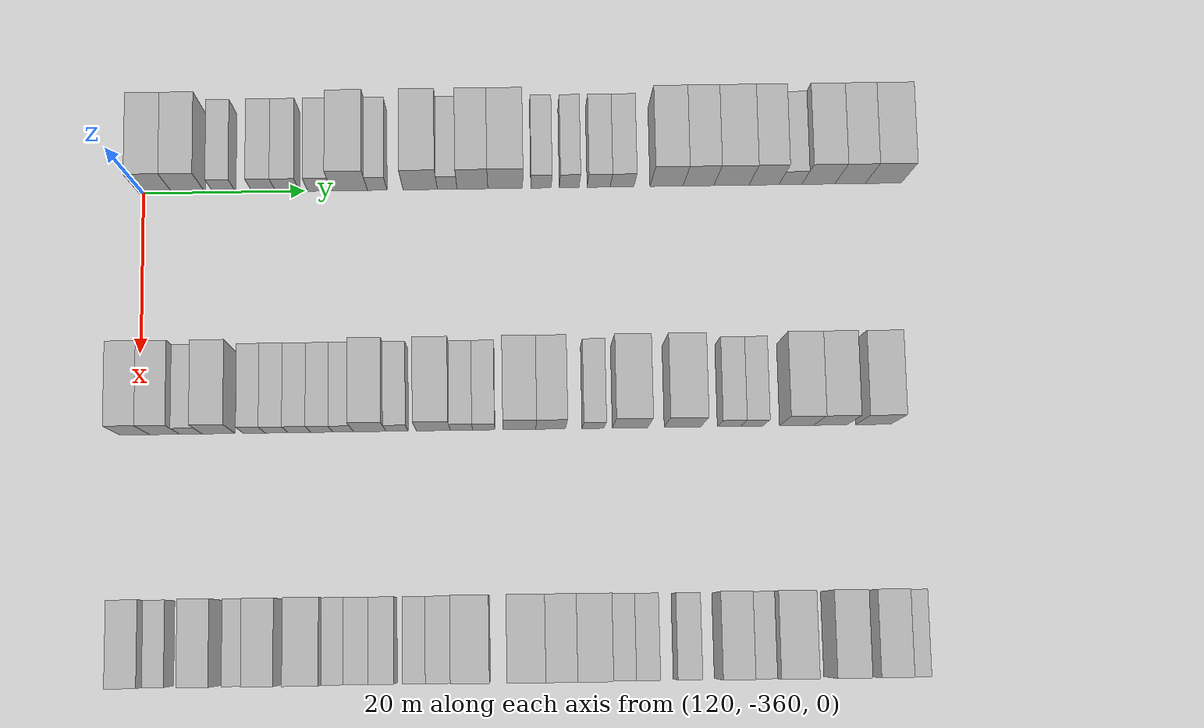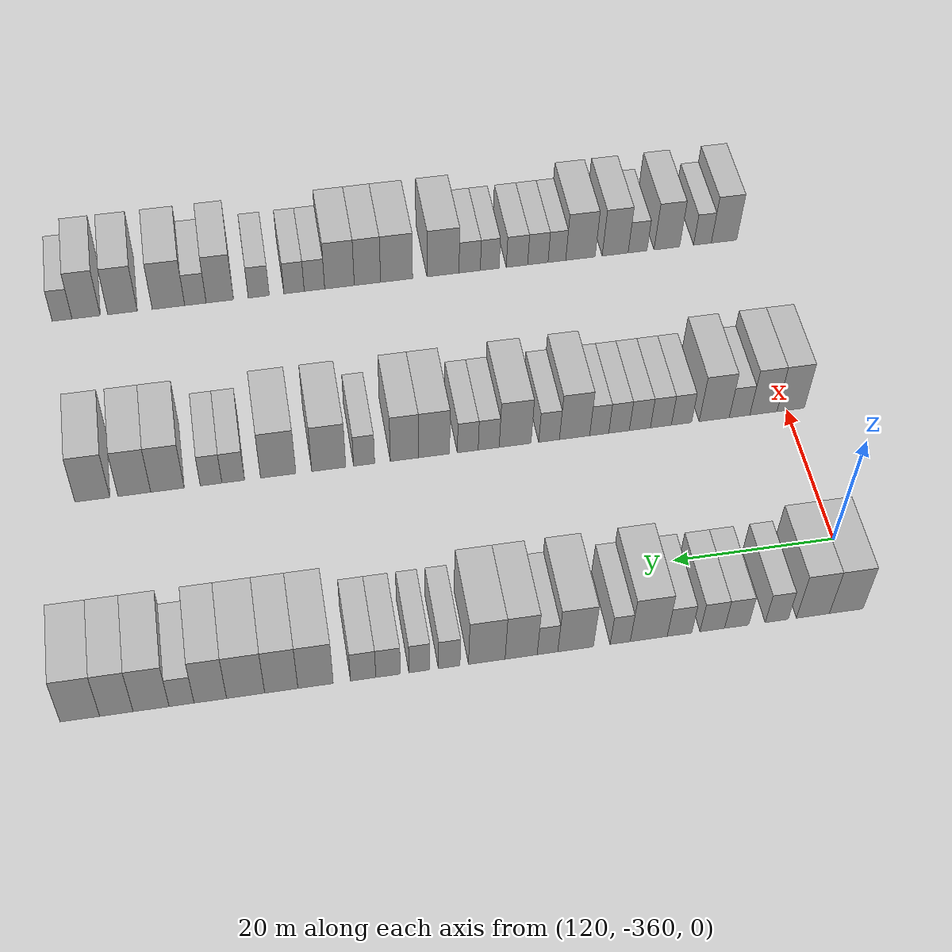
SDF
<sdf version="1.6">
 <world name="default">
  <model name="building_727">
   <static>1</static>
   <pose>115.0000 -358.4444 0 0.000000 0.000000 0.000000</pose>
   <link name="link">
    <pose>0 0 4.50 0 0 0</pose>
    <collision name="collision"><geometry><box><size>10.0000 4.1102 9.0000</size></box></geometry></collision>
    <visual name="visual">
     <cast_shadows>0</cast_shadows>
     <geometry><box><size>10.0000 4.1102 9.0000</size></box></geometry>
     <material>
      <script>
       <uri>model://HANNAS_wall/materials/scripts</uri>
       <uri>model://HANNAS_wall/materials/textures</uri>
       <name>vrc/HANNAS_wall</name>
      </script>
     </material>
    </visual>
   </link>
  </model>
  <model name="building_728">
   <static>1</static>
   <pose>115.0000 -354.3730 0 0.000000 0.000000 0.000000</pose>
   <link name="link">
    <pose>0 0 4.50 0 0 0</pose>
    <collision name="collision"><geometry><box><size>10.0000 4.0326 9.0000</size></box></geometry></collision>
    <visual name="visual">
     <cast_shadows>0</cast_shadows>
     <geometry><box><size>10.0000 4.0326 9.0000</size></box></geometry>
     <material>
      <script>
       <uri>model://HANNAS_wall/materials/scripts</uri>
       <uri>model://HANNAS_wall/materials/textures</uri>
       <name>vrc/HANNAS_wall</name>
      </script>
     </material>
    </visual>
   </link>
  </model>
  <model name="building_729">
   <static>1</static>
   <pose>115.0000 -349.9616 0 0.000000 0.000000 0.000000</pose>
   <link name="link">
    <pose>0 0 3.00 0 0 0</pose>
    <collision name="collision"><geometry><box><size>10.0000 2.7902 6.0000</size></box></geometry></collision>
    <visual name="visual">
     <cast_shadows>0</cast_shadows>
     <geometry><box><size>10.0000 2.7902 6.0000</size></box></geometry>
     <material>
      <script>
       <uri>model://HANNAS_wall/materials/scripts</uri>
       <uri>model://HANNAS_wall/materials/textures</uri>
       <name>vrc/HANNAS_wall</name>
      </script>
     </material>
    </visual>
   </link>
  </model>
  <model name="building_730">
   <static>1</static>
   <pose>115.0000 -345.1060 0 0.000000 0.000000 0.000000</pose>
   <link name="link">
    <pose>0 0 3.00 0 0 0</pose>
    <collision name="collision"><geometry><box><size>10.0000 2.9210 6.0000</size></box></geometry></collision>
    <visual name="visual">
     <cast_shadows>0</cast_shadows>
     <geometry><box><size>10.0000 2.9210 6.0000</size></box></geometry>
     <material>
      <script>
       <uri>model://HANNAS_wall/materials/scripts</uri>
       <uri>model://HANNAS_wall/materials/textures</uri>
       <name>vrc/HANNAS_wall</name>
      </script>
     </material>
    </visual>
   </link>
  </model>
  <model name="building_731">
   <static>1</static>
   <pose>115.0000 -342.1643 0 0.000000 0.000000 0.000000</pose>
   <link name="link">
    <pose>0 0 3.00 0 0 0</pose>
    <collision name="collision"><geometry><box><size>10.0000 2.9624 6.0000</size></box></geometry></collision>
    <visual name="visual">
     <cast_shadows>0</cast_shadows>
     <geometry><box><size>10.0000 2.9624 6.0000</size></box></geometry>
     <material>
      <script>
       <uri>model://HANNAS_wall/materials/scripts</uri>
       <uri>model://HANNAS_wall/materials/textures</uri>
       <name>vrc/HANNAS_wall</name>
      </script>
     </material>
    </visual>
   </link>
  </model>
  <model name="building_732">
   <static>1</static>
   <pose>115.0000 -338.2102 0 0.000000 0.000000 0.000000</pose>
   <link name="link">
    <pose>0 0 3.00 0 0 0</pose>
    <collision name="collision"><geometry><box><size>10.0000 2.9458 6.0000</size></box></geometry></collision>
    <visual name="visual">
     <cast_shadows>0</cast_shadows>
     <geometry><box><size>10.0000 2.9458 6.0000</size></box></geometry>
     <material>
      <script>
       <uri>model://HANNAS_wall/materials/scripts</uri>
       <uri>model://HANNAS_wall/materials/textures</uri>
       <name>vrc/HANNAS_wall</name>
      </script>
     </material>
    </visual>
   </link>
  </model>
  <model name="building_733">
   <static>1</static>
   <pose>115.0000 -334.5254 0 0.000000 0.000000 0.000000</pose>
   <link name="link">
    <pose>0 0 4.50 0 0 0</pose>
    <collision name="collision"><geometry><box><size>10.0000 4.4238 9.0000</size></box></geometry></collision>
    <visual name="visual">
     <cast_shadows>0</cast_shadows>
     <geometry><box><size>10.0000 4.4238 9.0000</size></box></geometry>
     <material>
      <script>
       <uri>model://HANNAS_wall/materials/scripts</uri>
       <uri>model://HANNAS_wall/materials/textures</uri>
       <name>vrc/HANNAS_wall</name>
      </script>
     </material>
    </visual>
   </link>
  </model>
  <model name="building_734">
   <static>1</static>
   <pose>115.0000 -331.1130 0 0.000000 0.000000 0.000000</pose>
   <link name="link">
    <pose>0 0 3.00 0 0 0</pose>
    <collision name="collision"><geometry><box><size>10.0000 2.4010 6.0000</size></box></geometry></collision>
    <visual name="visual">
     <cast_shadows>0</cast_shadows>
     <geometry><box><size>10.0000 2.4010 6.0000</size></box></geometry>
     <material>
      <script>
       <uri>model://HANNAS_wall/materials/scripts</uri>
       <uri>model://HANNAS_wall/materials/textures</uri>
       <name>vrc/HANNAS_wall</name>
      </script>
     </material>
    </visual>
   </link>
  </model>
  <model name="building_735">
   <static>1</static>
   <pose>115.0000 -325.7976 0 0.000000 0.000000 0.000000</pose>
   <link name="link">
    <pose>0 0 4.50 0 0 0</pose>
    <collision name="collision"><geometry><box><size>10.0000 4.2297 9.0000</size></box></geometry></collision>
    <visual name="visual">
     <cast_shadows>0</cast_shadows>
     <geometry><box><size>10.0000 4.2297 9.0000</size></box></geometry>
     <material>
      <script>
       <uri>model://HANNAS_wall/materials/scripts</uri>
       <uri>model://HANNAS_wall/materials/textures</uri>
       <name>vrc/HANNAS_wall</name>
      </script>
     </material>
    </visual>
   </link>
  </model>
  <model name="building_736">
   <static>1</static>
   <pose>115.0000 -322.4668 0 0.000000 0.000000 0.000000</pose>
   <link name="link">
    <pose>0 0 3.00 0 0 0</pose>
    <collision name="collision"><geometry><box><size>10.0000 2.4319 6.0000</size></box></geometry></collision>
    <visual name="visual">
     <cast_shadows>0</cast_shadows>
     <geometry><box><size>10.0000 2.4319 6.0000</size></box></geometry>
     <material>
      <script>
       <uri>model://HANNAS_wall/materials/scripts</uri>
       <uri>model://HANNAS_wall/materials/textures</uri>
       <name>vrc/HANNAS_wall</name>
      </script>
     </material>
    </visual>
   </link>
  </model>
  <model name="building_737">
   <static>1</static>
   <pose>115.0000 -319.3554 0 0.000000 0.000000 0.000000</pose>
   <link name="link">
    <pose>0 0 4.50 0 0 0</pose>
    <collision name="collision"><geometry><box><size>10.0000 3.7909 9.0000</size></box></geometry></collision>
    <visual name="visual">
     <cast_shadows>0</cast_shadows>
     <geometry><box><size>10.0000 3.7909 9.0000</size></box></geometry>
     <material>
      <script>
       <uri>model://HANNAS_wall/materials/scripts</uri>
       <uri>model://HANNAS_wall/materials/textures</uri>
       <name>vrc/HANNAS_wall</name>
      </script>
     </material>
    </visual>
   </link>
  </model>
  <model name="building_738">
   <static>1</static>
   <pose>115.0000 -315.3094 0 0.000000 0.000000 0.000000</pose>
   <link name="link">
    <pose>0 0 4.50 0 0 0</pose>
    <collision name="collision"><geometry><box><size>10.0000 4.3010 9.0000</size></box></geometry></collision>
    <visual name="visual">
     <cast_shadows>0</cast_shadows>
     <geometry><box><size>10.0000 4.3010 9.0000</size></box></geometry>
     <material>
      <script>
       <uri>model://HANNAS_wall/materials/scripts</uri>
       <uri>model://HANNAS_wall/materials/textures</uri>
       <name>vrc/HANNAS_wall</name>
      </script>
     </material>
    </visual>
   </link>
  </model>
  <model name="building_739">
   <static>1</static>
   <pose>115.0000 -310.8967 0 0.000000 0.000000 0.000000</pose>
   <link name="link">
    <pose>0 0 3.00 0 0 0</pose>
    <collision name="collision"><geometry><box><size>10.0000 2.5244 6.0000</size></box></geometry></collision>
    <visual name="visual">
     <cast_shadows>0</cast_shadows>
     <geometry><box><size>10.0000 2.5244 6.0000</size></box></geometry>
     <material>
      <script>
       <uri>model://HANNAS_wall/materials/scripts</uri>
       <uri>model://HANNAS_wall/materials/textures</uri>
       <name>vrc/HANNAS_wall</name>
      </script>
     </material>
    </visual>
   </link>
  </model>
  <model name="building_740">
   <static>1</static>
   <pose>115.0000 -307.4160 0 0.000000 0.000000 0.000000</pose>
   <link name="link">
    <pose>0 0 3.00 0 0 0</pose>
    <collision name="collision"><geometry><box><size>10.0000 2.4371 6.0000</size></box></geometry></collision>
    <visual name="visual">
     <cast_shadows>0</cast_shadows>
     <geometry><box><size>10.0000 2.4371 6.0000</size></box></geometry>
     <material>
      <script>
       <uri>model://HANNAS_wall/materials/scripts</uri>
       <uri>model://HANNAS_wall/materials/textures</uri>
       <name>vrc/HANNAS_wall</name>
      </script>
     </material>
    </visual>
   </link>
  </model>
  <model name="building_741">
   <static>1</static>
   <pose>115.0000 -303.7715 0 0.000000 0.000000 0.000000</pose>
   <link name="link">
    <pose>0 0 3.00 0 0 0</pose>
    <collision name="collision"><geometry><box><size>10.0000 2.8519 6.0000</size></box></geometry></collision>
    <visual name="visual">
     <cast_shadows>0</cast_shadows>
     <geometry><box><size>10.0000 2.8519 6.0000</size></box></geometry>
     <material>
      <script>
       <uri>model://HANNAS_wall/materials/scripts</uri>
       <uri>model://HANNAS_wall/materials/textures</uri>
       <name>vrc/HANNAS_wall</name>
      </script>
     </material>
    </visual>
   </link>
  </model>
  <model name="building_742">
   <static>1</static>
   <pose>115.0000 -300.8819 0 0.000000 0.000000 0.000000</pose>
   <link name="link">
    <pose>0 0 3.00 0 0 0</pose>
    <collision name="collision"><geometry><box><size>10.0000 2.9273 6.0000</size></box></geometry></collision>
    <visual name="visual">
     <cast_shadows>0</cast_shadows>
     <geometry><box><size>10.0000 2.9273 6.0000</size></box></geometry>
     <material>
      <script>
       <uri>model://HANNAS_wall/materials/scripts</uri>
       <uri>model://HANNAS_wall/materials/textures</uri>
       <name>vrc/HANNAS_wall</name>
      </script>
     </material>
    </visual>
   </link>
  </model>
  <model name="building_743">
   <static>1</static>
   <pose>115.0000 -295.3811 0 0.000000 0.000000 0.000000</pose>
   <link name="link">
    <pose>0 0 4.50 0 0 0</pose>
    <collision name="collision"><geometry><box><size>10.0000 4.0744 9.0000</size></box></geometry></collision>
    <visual name="visual">
     <cast_shadows>0</cast_shadows>
     <geometry><box><size>10.0000 4.0744 9.0000</size></box></geometry>
     <material>
      <script>
       <uri>model://HANNAS_wall/materials/scripts</uri>
       <uri>model://HANNAS_wall/materials/textures</uri>
       <name>vrc/HANNAS_wall</name>
      </script>
     </material>
    </visual>
   </link>
  </model>
  <model name="building_744">
   <static>1</static>
   <pose>115.0000 -291.4376 0 0.000000 0.000000 0.000000</pose>
   <link name="link">
    <pose>0 0 4.50 0 0 0</pose>
    <collision name="collision"><geometry><box><size>10.0000 3.8127 9.0000</size></box></geometry></collision>
    <visual name="visual">
     <cast_shadows>0</cast_shadows>
     <geometry><box><size>10.0000 3.8127 9.0000</size></box></geometry>
     <material>
      <script>
       <uri>model://HANNAS_wall/materials/scripts</uri>
       <uri>model://HANNAS_wall/materials/textures</uri>
       <name>vrc/HANNAS_wall</name>
      </script>
     </material>
    </visual>
   </link>
  </model>
  <model name="building_745">
   <static>1</static>
   <pose>115.0000 -287.3507 0 0.000000 0.000000 0.000000</pose>
   <link name="link">
    <pose>0 0 4.50 0 0 0</pose>
    <collision name="collision"><geometry><box><size>10.0000 4.3611 9.0000</size></box></geometry></collision>
    <visual name="visual">
     <cast_shadows>0</cast_shadows>
     <geometry><box><size>10.0000 4.3611 9.0000</size></box></geometry>
     <material>
      <script>
       <uri>model://HANNAS_wall/materials/scripts</uri>
       <uri>model://HANNAS_wall/materials/textures</uri>
       <name>vrc/HANNAS_wall</name>
      </script>
     </material>
    </visual>
   </link>
  </model>
  <model name="building_746">
   <static>1</static>
   <pose>115.0000 -283.3174 0 0.000000 0.000000 0.000000</pose>
   <link name="link">
    <pose>0 0 4.50 0 0 0</pose>
    <collision name="collision"><geometry><box><size>10.0000 3.7054 9.0000</size></box></geometry></collision>
    <visual name="visual">
     <cast_shadows>0</cast_shadows>
     <geometry><box><size>10.0000 3.7054 9.0000</size></box></geometry>
     <material>
      <script>
       <uri>model://HANNAS_wall/materials/scripts</uri>
       <uri>model://HANNAS_wall/materials/textures</uri>
       <name>vrc/HANNAS_wall</name>
      </script>
     </material>
    </visual>
   </link>
  </model>
  <model name="building_747">
   <static>1</static>
   <pose>115.0000 -280.0523 0 0.000000 0.000000 0.000000</pose>
   <link name="link">
    <pose>0 0 3.00 0 0 0</pose>
    <collision name="collision"><geometry><box><size>10.0000 2.8247 6.0000</size></box></geometry></collision>
    <visual name="visual">
     <cast_shadows>0</cast_shadows>
     <geometry><box><size>10.0000 2.8247 6.0000</size></box></geometry>
     <material>
      <script>
       <uri>model://HANNAS_wall/materials/scripts</uri>
       <uri>model://HANNAS_wall/materials/textures</uri>
       <name>vrc/HANNAS_wall</name>
      </script>
     </material>
    </visual>
   </link>
  </model>
  <model name="building_748">
   <static>1</static>
   <pose>115.0000 -276.5995 0 0.000000 0.000000 0.000000</pose>
   <link name="link">
    <pose>0 0 4.50 0 0 0</pose>
    <collision name="collision"><geometry><box><size>10.0000 4.0809 9.0000</size></box></geometry></collision>
    <visual name="visual">
     <cast_shadows>0</cast_shadows>
     <geometry><box><size>10.0000 4.0809 9.0000</size></box></geometry>
     <material>
      <script>
       <uri>model://HANNAS_wall/materials/scripts</uri>
       <uri>model://HANNAS_wall/materials/textures</uri>
       <name>vrc/HANNAS_wall</name>
      </script>
     </material>
    </visual>
   </link>
  </model>
  <model name="building_749">
   <static>1</static>
   <pose>115.0000 -272.6747 0 0.000000 0.000000 0.000000</pose>
   <link name="link">
    <pose>0 0 4.50 0 0 0</pose>
    <collision name="collision"><geometry><box><size>10.0000 3.7689 9.0000</size></box></geometry></collision>
    <visual name="visual">
     <cast_shadows>0</cast_shadows>
     <geometry><box><size>10.0000 3.7689 9.0000</size></box></geometry>
     <material>
      <script>
       <uri>model://HANNAS_wall/materials/scripts</uri>
       <uri>model://HANNAS_wall/materials/textures</uri>
       <name>vrc/HANNAS_wall</name>
      </script>
     </material>
    </visual>
   </link>
  </model>
  <model name="building_750">
   <static>1</static>
   <pose>115.0000 -268.5633 0 0.000000 0.000000 0.000000</pose>
   <link name="link">
    <pose>0 0 4.50 0 0 0</pose>
    <collision name="collision"><geometry><box><size>10.0000 4.4539 9.0000</size></box></geometry></collision>
    <visual name="visual">
     <cast_shadows>0</cast_shadows>
     <geometry><box><size>10.0000 4.4539 9.0000</size></box></geometry>
     <material>
      <script>
       <uri>model://HANNAS_wall/materials/scripts</uri>
       <uri>model://HANNAS_wall/materials/textures</uri>
       <name>vrc/HANNAS_wall</name>
      </script>
     </material>
    </visual>
   </link>
  </model>
  <model name="building_936">
   <static>1</static>
   <pose>145.0000 -360.5052 0 0.000000 0.000000 0.000000</pose>
   <link name="link">
    <pose>0 0 4.50 0 0 0</pose>
    <collision name="collision"><geometry><box><size>10.0000 3.6300 9.0000</size></box></geometry></collision>
    <visual name="visual">
     <cast_shadows>0</cast_shadows>
     <geometry><box><size>10.0000 3.6300 9.0000</size></box></geometry>
     <material>
      <script>
       <uri>model://HANNAS_wall/materials/scripts</uri>
       <uri>model://HANNAS_wall/materials/textures</uri>
       <name>vrc/HANNAS_wall</name>
      </script>
     </material>
    </visual>
   </link>
  </model>
  <model name="building_937">
   <static>1</static>
   <pose>145.0000 -356.8886 0 0.000000 0.000000 0.000000</pose>
   <link name="link">
    <pose>0 0 4.50 0 0 0</pose>
    <collision name="collision"><geometry><box><size>10.0000 3.6031 9.0000</size></box></geometry></collision>
    <visual name="visual">
     <cast_shadows>0</cast_shadows>
     <geometry><box><size>10.0000 3.6031 9.0000</size></box></geometry>
     <material>
      <script>
       <uri>model://HANNAS_wall/materials/scripts</uri>
       <uri>model://HANNAS_wall/materials/textures</uri>
       <name>vrc/HANNAS_wall</name>
      </script>
     </material>
    </visual>
   </link>
  </model>
  <model name="building_938">
   <static>1</static>
   <pose>145.0000 -353.7194 0 0.000000 0.000000 0.000000</pose>
   <link name="link">
    <pose>0 0 3.00 0 0 0</pose>
    <collision name="collision"><geometry><box><size>10.0000 2.7353 6.0000</size></box></geometry></collision>
    <visual name="visual">
     <cast_shadows>0</cast_shadows>
     <geometry><box><size>10.0000 2.7353 6.0000</size></box></geometry>
     <material>
      <script>
       <uri>model://HANNAS_wall/materials/scripts</uri>
       <uri>model://HANNAS_wall/materials/textures</uri>
       <name>vrc/HANNAS_wall</name>
      </script>
     </material>
    </visual>
   </link>
  </model>
  <model name="building_939">
   <static>1</static>
   <pose>145.0000 -350.3670 0 0.000000 0.000000 0.000000</pose>
   <link name="link">
    <pose>0 0 4.50 0 0 0</pose>
    <collision name="collision"><geometry><box><size>10.0000 3.9695 9.0000</size></box></geometry></collision>
    <visual name="visual">
     <cast_shadows>0</cast_shadows>
     <geometry><box><size>10.0000 3.9695 9.0000</size></box></geometry>
     <material>
      <script>
       <uri>model://HANNAS_wall/materials/scripts</uri>
       <uri>model://HANNAS_wall/materials/textures</uri>
       <name>vrc/HANNAS_wall</name>
      </script>
     </material>
    </visual>
   </link>
  </model>
  <model name="building_940">
   <static>1</static>
   <pose>145.0000 -346.0539 0 0.000000 0.000000 0.000000</pose>
   <link name="link">
    <pose>0 0 3.00 0 0 0</pose>
    <collision name="collision"><geometry><box><size>10.0000 2.6566 6.0000</size></box></geometry></collision>
    <visual name="visual">
     <cast_shadows>0</cast_shadows>
     <geometry><box><size>10.0000 2.6566 6.0000</size></box></geometry>
     <material>
      <script>
       <uri>model://HANNAS_wall/materials/scripts</uri>
       <uri>model://HANNAS_wall/materials/textures</uri>
       <name>vrc/HANNAS_wall</name>
      </script>
     </material>
    </visual>
   </link>
  </model>
  <model name="building_941">
   <static>1</static>
   <pose>145.0000 -343.3498 0 0.000000 0.000000 0.000000</pose>
   <link name="link">
    <pose>0 0 3.00 0 0 0</pose>
    <collision name="collision"><geometry><box><size>10.0000 2.7517 6.0000</size></box></geometry></collision>
    <visual name="visual">
     <cast_shadows>0</cast_shadows>
     <geometry><box><size>10.0000 2.7517 6.0000</size></box></geometry>
     <material>
      <script>
       <uri>model://HANNAS_wall/materials/scripts</uri>
       <uri>model://HANNAS_wall/materials/textures</uri>
       <name>vrc/HANNAS_wall</name>
      </script>
     </material>
    </visual>
   </link>
  </model>
  <model name="building_942">
   <static>1</static>
   <pose>145.0000 -340.5966 0 0.000000 0.000000 0.000000</pose>
   <link name="link">
    <pose>0 0 3.00 0 0 0</pose>
    <collision name="collision"><geometry><box><size>10.0000 2.7547 6.0000</size></box></geometry></collision>
    <visual name="visual">
     <cast_shadows>0</cast_shadows>
     <geometry><box><size>10.0000 2.7547 6.0000</size></box></geometry>
     <material>
      <script>
       <uri>model://HANNAS_wall/materials/scripts</uri>
       <uri>model://HANNAS_wall/materials/textures</uri>
       <name>vrc/HANNAS_wall</name>
      </script>
     </material>
    </visual>
   </link>
  </model>
  <model name="building_943">
   <static>1</static>
   <pose>145.0000 -337.8760 0 0.000000 0.000000 0.000000</pose>
   <link name="link">
    <pose>0 0 3.00 0 0 0</pose>
    <collision name="collision"><geometry><box><size>10.0000 2.6866 6.0000</size></box></geometry></collision>
    <visual name="visual">
     <cast_shadows>0</cast_shadows>
     <geometry><box><size>10.0000 2.6866 6.0000</size></box></geometry>
     <material>
      <script>
       <uri>model://HANNAS_wall/materials/scripts</uri>
       <uri>model://HANNAS_wall/materials/textures</uri>
       <name>vrc/HANNAS_wall</name>
      </script>
     </material>
    </visual>
   </link>
  </model>
  <model name="building_944">
   <static>1</static>
   <pose>145.0000 -335.2921 0 0.000000 0.000000 0.000000</pose>
   <link name="link">
    <pose>0 0 3.00 0 0 0</pose>
    <collision name="collision"><geometry><box><size>10.0000 2.4811 6.0000</size></box></geometry></collision>
    <visual name="visual">
     <cast_shadows>0</cast_shadows>
     <geometry><box><size>10.0000 2.4811 6.0000</size></box></geometry>
     <material>
      <script>
       <uri>model://HANNAS_wall/materials/scripts</uri>
       <uri>model://HANNAS_wall/materials/textures</uri>
       <name>vrc/HANNAS_wall</name>
      </script>
     </material>
    </visual>
   </link>
  </model>
  <model name="building_945">
   <static>1</static>
   <pose>145.0000 -332.0872 0 0.000000 0.000000 0.000000</pose>
   <link name="link">
    <pose>0 0 4.50 0 0 0</pose>
    <collision name="collision"><geometry><box><size>10.0000 3.9286 9.0000</size></box></geometry></collision>
    <visual name="visual">
     <cast_shadows>0</cast_shadows>
     <geometry><box><size>10.0000 3.9286 9.0000</size></box></geometry>
     <material>
      <script>
       <uri>model://HANNAS_wall/materials/scripts</uri>
       <uri>model://HANNAS_wall/materials/textures</uri>
       <name>vrc/HANNAS_wall</name>
      </script>
     </material>
    </visual>
   </link>
  </model>
  <model name="building_946">
   <static>1</static>
   <pose>145.0000 -328.7830 0 0.000000 0.000000 0.000000</pose>
   <link name="link">
    <pose>0 0 3.00 0 0 0</pose>
    <collision name="collision"><geometry><box><size>10.0000 2.6797 6.0000</size></box></geometry></collision>
    <visual name="visual">
     <cast_shadows>0</cast_shadows>
     <geometry><box><size>10.0000 2.6797 6.0000</size></box></geometry>
     <material>
      <script>
       <uri>model://HANNAS_wall/materials/scripts</uri>
       <uri>model://HANNAS_wall/materials/textures</uri>
       <name>vrc/HANNAS_wall</name>
      </script>
     </material>
    </visual>
   </link>
  </model>
  <model name="building_947">
   <static>1</static>
   <pose>145.0000 -324.3920 0 0.000000 0.000000 0.000000</pose>
   <link name="link">
    <pose>0 0 4.50 0 0 0</pose>
    <collision name="collision"><geometry><box><size>10.0000 4.1023 9.0000</size></box></geometry></collision>
    <visual name="visual">
     <cast_shadows>0</cast_shadows>
     <geometry><box><size>10.0000 4.1023 9.0000</size></box></geometry>
     <material>
      <script>
       <uri>model://HANNAS_wall/materials/scripts</uri>
       <uri>model://HANNAS_wall/materials/textures</uri>
       <name>vrc/HANNAS_wall</name>
      </script>
     </material>
    </visual>
   </link>
  </model>
  <model name="building_948">
   <static>1</static>
   <pose>145.0000 -320.9876 0 0.000000 0.000000 0.000000</pose>
   <link name="link">
    <pose>0 0 3.00 0 0 0</pose>
    <collision name="collision"><geometry><box><size>10.0000 2.7065 6.0000</size></box></geometry></collision>
    <visual name="visual">
     <cast_shadows>0</cast_shadows>
     <geometry><box><size>10.0000 2.7065 6.0000</size></box></geometry>
     <material>
      <script>
       <uri>model://HANNAS_wall/materials/scripts</uri>
       <uri>model://HANNAS_wall/materials/textures</uri>
       <name>vrc/HANNAS_wall</name>
      </script>
     </material>
    </visual>
   </link>
  </model>
  <model name="building_949">
   <static>1</static>
   <pose>145.0000 -318.2982 0 0.000000 0.000000 0.000000</pose>
   <link name="link">
    <pose>0 0 3.00 0 0 0</pose>
    <collision name="collision"><geometry><box><size>10.0000 2.6723 6.0000</size></box></geometry></collision>
    <visual name="visual">
     <cast_shadows>0</cast_shadows>
     <geometry><box><size>10.0000 2.6723 6.0000</size></box></geometry>
     <material>
      <script>
       <uri>model://HANNAS_wall/materials/scripts</uri>
       <uri>model://HANNAS_wall/materials/textures</uri>
       <name>vrc/HANNAS_wall</name>
      </script>
     </material>
    </visual>
   </link>
  </model>
  <model name="building_950">
   <static>1</static>
   <pose>145.0000 -313.9895 0 0.000000 0.000000 0.000000</pose>
   <link name="link">
    <pose>0 0 4.50 0 0 0</pose>
    <collision name="collision"><geometry><box><size>10.0000 3.9453 9.0000</size></box></geometry></collision>
    <visual name="visual">
     <cast_shadows>0</cast_shadows>
     <geometry><box><size>10.0000 3.9453 9.0000</size></box></geometry>
     <material>
      <script>
       <uri>model://HANNAS_wall/materials/scripts</uri>
       <uri>model://HANNAS_wall/materials/textures</uri>
       <name>vrc/HANNAS_wall</name>
      </script>
     </material>
    </visual>
   </link>
  </model>
  <model name="building_951">
   <static>1</static>
   <pose>145.0000 -310.2161 0 0.000000 0.000000 0.000000</pose>
   <link name="link">
    <pose>0 0 4.50 0 0 0</pose>
    <collision name="collision"><geometry><box><size>10.0000 3.6015 9.0000</size></box></geometry></collision>
    <visual name="visual">
     <cast_shadows>0</cast_shadows>
     <geometry><box><size>10.0000 3.6015 9.0000</size></box></geometry>
     <material>
      <script>
       <uri>model://HANNAS_wall/materials/scripts</uri>
       <uri>model://HANNAS_wall/materials/textures</uri>
       <name>vrc/HANNAS_wall</name>
      </script>
     </material>
    </visual>
   </link>
  </model>
  <model name="building_952">
   <static>1</static>
   <pose>145.0000 -305.0855 0 0.000000 0.000000 0.000000</pose>
   <link name="link">
    <pose>0 0 3.00 0 0 0</pose>
    <collision name="collision"><geometry><box><size>10.0000 2.6597 6.0000</size></box></geometry></collision>
    <visual name="visual">
     <cast_shadows>0</cast_shadows>
     <geometry><box><size>10.0000 2.6597 6.0000</size></box></geometry>
     <material>
      <script>
       <uri>model://HANNAS_wall/materials/scripts</uri>
       <uri>model://HANNAS_wall/materials/textures</uri>
       <name>vrc/HANNAS_wall</name>
      </script>
     </material>
    </visual>
   </link>
  </model>
  <model name="building_953">
   <static>1</static>
   <pose>145.0000 -300.6125 0 0.000000 0.000000 0.000000</pose>
   <link name="link">
    <pose>0 0 4.50 0 0 0</pose>
    <collision name="collision"><geometry><box><size>10.0000 4.2863 9.0000</size></box></geometry></collision>
    <visual name="visual">
     <cast_shadows>0</cast_shadows>
     <geometry><box><size>10.0000 4.2863 9.0000</size></box></geometry>
     <material>
      <script>
       <uri>model://HANNAS_wall/materials/scripts</uri>
       <uri>model://HANNAS_wall/materials/textures</uri>
       <name>vrc/HANNAS_wall</name>
      </script>
     </material>
    </visual>
   </link>
  </model>
  <model name="building_954">
   <static>1</static>
   <pose>145.0000 -294.2518 0 0.000000 0.000000 0.000000</pose>
   <link name="link">
    <pose>0 0 4.50 0 0 0</pose>
    <collision name="collision"><geometry><box><size>10.0000 4.4351 9.0000</size></box></geometry></collision>
    <visual name="visual">
     <cast_shadows>0</cast_shadows>
     <geometry><box><size>10.0000 4.4351 9.0000</size></box></geometry>
     <material>
      <script>
       <uri>model://HANNAS_wall/materials/scripts</uri>
       <uri>model://HANNAS_wall/materials/textures</uri>
       <name>vrc/HANNAS_wall</name>
      </script>
     </material>
    </visual>
   </link>
  </model>
  <model name="building_955">
   <static>1</static>
   <pose>145.0000 -288.6163 0 0.000000 0.000000 0.000000</pose>
   <link name="link">
    <pose>0 0 3.00 0 0 0</pose>
    <collision name="collision"><geometry><box><size>10.0000 2.8359 6.0000</size></box></geometry></collision>
    <visual name="visual">
     <cast_shadows>0</cast_shadows>
     <geometry><box><size>10.0000 2.8359 6.0000</size></box></geometry>
     <material>
      <script>
       <uri>model://HANNAS_wall/materials/scripts</uri>
       <uri>model://HANNAS_wall/materials/textures</uri>
       <name>vrc/HANNAS_wall</name>
      </script>
     </material>
    </visual>
   </link>
  </model>
  <model name="building_956">
   <static>1</static>
   <pose>145.0000 -285.8507 0 0.000000 0.000000 0.000000</pose>
   <link name="link">
    <pose>0 0 3.00 0 0 0</pose>
    <collision name="collision"><geometry><box><size>10.0000 2.6955 6.0000</size></box></geometry></collision>
    <visual name="visual">
     <cast_shadows>0</cast_shadows>
     <geometry><box><size>10.0000 2.6955 6.0000</size></box></geometry>
     <material>
      <script>
       <uri>model://HANNAS_wall/materials/scripts</uri>
       <uri>model://HANNAS_wall/materials/textures</uri>
       <name>vrc/HANNAS_wall</name>
      </script>
     </material>
    </visual>
   </link>
  </model>
  <model name="building_957">
   <static>1</static>
   <pose>145.0000 -280.4309 0 0.000000 0.000000 0.000000</pose>
   <link name="link">
    <pose>0 0 4.50 0 0 0</pose>
    <collision name="collision"><geometry><box><size>10.0000 4.1440 9.0000</size></box></geometry></collision>
    <visual name="visual">
     <cast_shadows>0</cast_shadows>
     <geometry><box><size>10.0000 4.1440 9.0000</size></box></geometry>
     <material>
      <script>
       <uri>model://HANNAS_wall/materials/scripts</uri>
       <uri>model://HANNAS_wall/materials/textures</uri>
       <name>vrc/HANNAS_wall</name>
      </script>
     </material>
    </visual>
   </link>
  </model>
  <model name="building_958">
   <static>1</static>
   <pose>145.0000 -276.3313 0 0.000000 0.000000 0.000000</pose>
   <link name="link">
    <pose>0 0 4.50 0 0 0</pose>
    <collision name="collision"><geometry><box><size>10.0000 4.0551 9.0000</size></box></geometry></collision>
    <visual name="visual">
     <cast_shadows>0</cast_shadows>
     <geometry><box><size>10.0000 4.0551 9.0000</size></box></geometry>
     <material>
      <script>
       <uri>model://HANNAS_wall/materials/scripts</uri>
       <uri>model://HANNAS_wall/materials/textures</uri>
       <name>vrc/HANNAS_wall</name>
      </script>
     </material>
    </visual>
   </link>
  </model>
  <model name="building_959">
   <static>1</static>
   <pose>145.0000 -271.1534 0 0.000000 0.000000 0.000000</pose>
   <link name="link">
    <pose>0 0 4.50 0 0 0</pose>
    <collision name="collision"><geometry><box><size>10.0000 4.3008 9.0000</size></box></geometry></collision>
    <visual name="visual">
     <cast_shadows>0</cast_shadows>
     <geometry><box><size>10.0000 4.3008 9.0000</size></box></geometry>
     <material>
      <script>
       <uri>model://HANNAS_wall/materials/scripts</uri>
       <uri>model://HANNAS_wall/materials/textures</uri>
       <name>vrc/HANNAS_wall</name>
      </script>
     </material>
    </visual>
   </link>
  </model>
  <model name="building_1167">
   <static>1</static>
   <pose>175.0000 -359.7409 0 0.000000 0.000000 0.000000</pose>
   <link name="link">
    <pose>0 0 4.50 0 0 0</pose>
    <collision name="collision"><geometry><box><size>10.0000 3.6341 9.0000</size></box></geometry></collision>
    <visual name="visual">
     <cast_shadows>0</cast_shadows>
     <geometry><box><size>10.0000 3.6341 9.0000</size></box></geometry>
     <material>
      <script>
       <uri>model://HANNAS_wall/materials/scripts</uri>
       <uri>model://HANNAS_wall/materials/textures</uri>
       <name>vrc/HANNAS_wall</name>
      </script>
     </material>
    </visual>
   </link>
  </model>
  <model name="building_1168">
   <static>1</static>
   <pose>175.0000 -356.6586 0 0.000000 0.000000 0.000000</pose>
   <link name="link">
    <pose>0 0 3.00 0 0 0</pose>
    <collision name="collision"><geometry><box><size>10.0000 2.5305 6.0000</size></box></geometry></collision>
    <visual name="visual">
     <cast_shadows>0</cast_shadows>
     <geometry><box><size>10.0000 2.5305 6.0000</size></box></geometry>
     <material>
      <script>
       <uri>model://HANNAS_wall/materials/scripts</uri>
       <uri>model://HANNAS_wall/materials/textures</uri>
       <name>vrc/HANNAS_wall</name>
      </script>
     </material>
    </visual>
   </link>
  </model>
  <model name="building_1169">
   <static>1</static>
   <pose>175.0000 -351.5705 0 0.000000 0.000000 0.000000</pose>
   <link name="link">
    <pose>0 0 4.50 0 0 0</pose>
    <collision name="collision"><geometry><box><size>10.0000 3.6457 9.0000</size></box></geometry></collision>
    <visual name="visual">
     <cast_shadows>0</cast_shadows>
     <geometry><box><size>10.0000 3.6457 9.0000</size></box></geometry>
     <material>
      <script>
       <uri>model://HANNAS_wall/materials/scripts</uri>
       <uri>model://HANNAS_wall/materials/textures</uri>
       <name>vrc/HANNAS_wall</name>
      </script>
     </material>
    </visual>
   </link>
  </model>
  <model name="building_1170">
   <static>1</static>
   <pose>175.0000 -347.4062 0 0.000000 0.000000 0.000000</pose>
   <link name="link">
    <pose>0 0 3.00 0 0 0</pose>
    <collision name="collision"><geometry><box><size>10.0000 2.6829 6.0000</size></box></geometry></collision>
    <visual name="visual">
     <cast_shadows>0</cast_shadows>
     <geometry><box><size>10.0000 2.6829 6.0000</size></box></geometry>
     <material>
      <script>
       <uri>model://HANNAS_wall/materials/scripts</uri>
       <uri>model://HANNAS_wall/materials/textures</uri>
       <name>vrc/HANNAS_wall</name>
      </script>
     </material>
    </visual>
   </link>
  </model>
  <model name="building_1171">
   <static>1</static>
   <pose>175.0000 -344.2300 0 0.000000 0.000000 0.000000</pose>
   <link name="link">
    <pose>0 0 4.50 0 0 0</pose>
    <collision name="collision"><geometry><box><size>10.0000 3.6697 9.0000</size></box></geometry></collision>
    <visual name="visual">
     <cast_shadows>0</cast_shadows>
     <geometry><box><size>10.0000 3.6697 9.0000</size></box></geometry>
     <material>
      <script>
       <uri>model://HANNAS_wall/materials/scripts</uri>
       <uri>model://HANNAS_wall/materials/textures</uri>
       <name>vrc/HANNAS_wall</name>
      </script>
     </material>
    </visual>
   </link>
  </model>
  <model name="building_1172">
   <static>1</static>
   <pose>175.0000 -339.3216 0 0.000000 0.000000 0.000000</pose>
   <link name="link">
    <pose>0 0 4.50 0 0 0</pose>
    <collision name="collision"><geometry><box><size>10.0000 4.1470 9.0000</size></box></geometry></collision>
    <visual name="visual">
     <cast_shadows>0</cast_shadows>
     <geometry><box><size>10.0000 4.1470 9.0000</size></box></geometry>
     <material>
      <script>
       <uri>model://HANNAS_wall/materials/scripts</uri>
       <uri>model://HANNAS_wall/materials/textures</uri>
       <name>vrc/HANNAS_wall</name>
      </script>
     </material>
    </visual>
   </link>
  </model>
  <model name="building_1173">
   <static>1</static>
   <pose>175.0000 -336.0063 0 0.000000 0.000000 0.000000</pose>
   <link name="link">
    <pose>0 0 3.00 0 0 0</pose>
    <collision name="collision"><geometry><box><size>10.0000 2.4837 6.0000</size></box></geometry></collision>
    <visual name="visual">
     <cast_shadows>0</cast_shadows>
     <geometry><box><size>10.0000 2.4837 6.0000</size></box></geometry>
     <material>
      <script>
       <uri>model://HANNAS_wall/materials/scripts</uri>
       <uri>model://HANNAS_wall/materials/textures</uri>
       <name>vrc/HANNAS_wall</name>
      </script>
     </material>
    </visual>
   </link>
  </model>
  <model name="building_1174">
   <static>1</static>
   <pose>175.0000 -333.3302 0 0.000000 0.000000 0.000000</pose>
   <link name="link">
    <pose>0 0 3.00 0 0 0</pose>
    <collision name="collision"><geometry><box><size>10.0000 2.8685 6.0000</size></box></geometry></collision>
    <visual name="visual">
     <cast_shadows>0</cast_shadows>
     <geometry><box><size>10.0000 2.8685 6.0000</size></box></geometry>
     <material>
      <script>
       <uri>model://HANNAS_wall/materials/scripts</uri>
       <uri>model://HANNAS_wall/materials/textures</uri>
       <name>vrc/HANNAS_wall</name>
      </script>
     </material>
    </visual>
   </link>
  </model>
  <model name="building_1175">
   <static>1</static>
   <pose>175.0000 -330.3980 0 0.000000 0.000000 0.000000</pose>
   <link name="link">
    <pose>0 0 3.00 0 0 0</pose>
    <collision name="collision"><geometry><box><size>10.0000 2.9960 6.0000</size></box></geometry></collision>
    <visual name="visual">
     <cast_shadows>0</cast_shadows>
     <geometry><box><size>10.0000 2.9960 6.0000</size></box></geometry>
     <material>
      <script>
       <uri>model://HANNAS_wall/materials/scripts</uri>
       <uri>model://HANNAS_wall/materials/textures</uri>
       <name>vrc/HANNAS_wall</name>
      </script>
     </material>
    </visual>
   </link>
  </model>
  <model name="building_1176">
   <static>1</static>
   <pose>175.0000 -326.5872 0 0.000000 0.000000 0.000000</pose>
   <link name="link">
    <pose>0 0 3.00 0 0 0</pose>
    <collision name="collision"><geometry><box><size>10.0000 2.6256 6.0000</size></box></geometry></collision>
    <visual name="visual">
     <cast_shadows>0</cast_shadows>
     <geometry><box><size>10.0000 2.6256 6.0000</size></box></geometry>
     <material>
      <script>
       <uri>model://HANNAS_wall/materials/scripts</uri>
       <uri>model://HANNAS_wall/materials/textures</uri>
       <name>vrc/HANNAS_wall</name>
      </script>
     </material>
    </visual>
   </link>
  </model>
  <model name="building_1177">
   <static>1</static>
   <pose>175.0000 -323.7834 0 0.000000 0.000000 0.000000</pose>
   <link name="link">
    <pose>0 0 3.00 0 0 0</pose>
    <collision name="collision"><geometry><box><size>10.0000 2.9819 6.0000</size></box></geometry></collision>
    <visual name="visual">
     <cast_shadows>0</cast_shadows>
     <geometry><box><size>10.0000 2.9819 6.0000</size></box></geometry>
     <material>
      <script>
       <uri>model://HANNAS_wall/materials/scripts</uri>
       <uri>model://HANNAS_wall/materials/textures</uri>
       <name>vrc/HANNAS_wall</name>
      </script>
     </material>
    </visual>
   </link>
  </model>
  <model name="building_1178">
   <static>1</static>
   <pose>175.0000 -320.0766 0 0.000000 0.000000 0.000000</pose>
   <link name="link">
    <pose>0 0 4.50 0 0 0</pose>
    <collision name="collision"><geometry><box><size>10.0000 4.4317 9.0000</size></box></geometry></collision>
    <visual name="visual">
     <cast_shadows>0</cast_shadows>
     <geometry><box><size>10.0000 4.4317 9.0000</size></box></geometry>
     <material>
      <script>
       <uri>model://HANNAS_wall/materials/scripts</uri>
       <uri>model://HANNAS_wall/materials/textures</uri>
       <name>vrc/HANNAS_wall</name>
      </script>
     </material>
    </visual>
   </link>
  </model>
  <model name="building_1179">
   <static>1</static>
   <pose>175.0000 -313.6552 0 0.000000 0.000000 0.000000</pose>
   <link name="link">
    <pose>0 0 4.50 0 0 0</pose>
    <collision name="collision"><geometry><box><size>10.0000 4.4112 9.0000</size></box></geometry></collision>
    <visual name="visual">
     <cast_shadows>0</cast_shadows>
     <geometry><box><size>10.0000 4.4112 9.0000</size></box></geometry>
     <material>
      <script>
       <uri>model://HANNAS_wall/materials/scripts</uri>
       <uri>model://HANNAS_wall/materials/textures</uri>
       <name>vrc/HANNAS_wall</name>
      </script>
     </material>
    </visual>
   </link>
  </model>
  <model name="building_1180">
   <static>1</static>
   <pose>175.0000 -309.6389 0 0.000000 0.000000 0.000000</pose>
   <link name="link">
    <pose>0 0 4.50 0 0 0</pose>
    <collision name="collision"><geometry><box><size>10.0000 3.6213 9.0000</size></box></geometry></collision>
    <visual name="visual">
     <cast_shadows>0</cast_shadows>
     <geometry><box><size>10.0000 3.6213 9.0000</size></box></geometry>
     <material>
      <script>
       <uri>model://HANNAS_wall/materials/scripts</uri>
       <uri>model://HANNAS_wall/materials/textures</uri>
       <name>vrc/HANNAS_wall</name>
      </script>
     </material>
    </visual>
   </link>
  </model>
  <model name="building_1181">
   <static>1</static>
   <pose>175.0000 -305.7938 0 0.000000 0.000000 0.000000</pose>
   <link name="link">
    <pose>0 0 4.50 0 0 0</pose>
    <collision name="collision"><geometry><box><size>10.0000 4.0689 9.0000</size></box></geometry></collision>
    <visual name="visual">
     <cast_shadows>0</cast_shadows>
     <geometry><box><size>10.0000 4.0689 9.0000</size></box></geometry>
     <material>
      <script>
       <uri>model://HANNAS_wall/materials/scripts</uri>
       <uri>model://HANNAS_wall/materials/textures</uri>
       <name>vrc/HANNAS_wall</name>
      </script>
     </material>
    </visual>
   </link>
  </model>
  <model name="building_1182">
   <static>1</static>
   <pose>175.0000 -302.3593 0 0.000000 0.000000 0.000000</pose>
   <link name="link">
    <pose>0 0 3.00 0 0 0</pose>
    <collision name="collision"><geometry><box><size>10.0000 2.8001 6.0000</size></box></geometry></collision>
    <visual name="visual">
     <cast_shadows>0</cast_shadows>
     <geometry><box><size>10.0000 2.8001 6.0000</size></box></geometry>
     <material>
      <script>
       <uri>model://HANNAS_wall/materials/scripts</uri>
       <uri>model://HANNAS_wall/materials/textures</uri>
       <name>vrc/HANNAS_wall</name>
      </script>
     </material>
    </visual>
   </link>
  </model>
  <model name="building_1183">
   <static>1</static>
   <pose>175.0000 -299.5766 0 0.000000 0.000000 0.000000</pose>
   <link name="link">
    <pose>0 0 3.00 0 0 0</pose>
    <collision name="collision"><geometry><box><size>10.0000 2.7654 6.0000</size></box></geometry></collision>
    <visual name="visual">
     <cast_shadows>0</cast_shadows>
     <geometry><box><size>10.0000 2.7654 6.0000</size></box></geometry>
     <material>
      <script>
       <uri>model://HANNAS_wall/materials/scripts</uri>
       <uri>model://HANNAS_wall/materials/textures</uri>
       <name>vrc/HANNAS_wall</name>
      </script>
     </material>
    </visual>
   </link>
  </model>
  <model name="building_1184">
   <static>1</static>
   <pose>175.0000 -294.7640 0 0.000000 0.000000 0.000000</pose>
   <link name="link">
    <pose>0 0 3.00 0 0 0</pose>
    <collision name="collision"><geometry><box><size>10.0000 2.8596 6.0000</size></box></geometry></collision>
    <visual name="visual">
     <cast_shadows>0</cast_shadows>
     <geometry><box><size>10.0000 2.8596 6.0000</size></box></geometry>
     <material>
      <script>
       <uri>model://HANNAS_wall/materials/scripts</uri>
       <uri>model://HANNAS_wall/materials/textures</uri>
       <name>vrc/HANNAS_wall</name>
      </script>
     </material>
    </visual>
   </link>
  </model>
  <model name="building_1185">
   <static>1</static>
   <pose>175.0000 -289.4845 0 0.000000 0.000000 0.000000</pose>
   <link name="link">
    <pose>0 0 4.50 0 0 0</pose>
    <collision name="collision"><geometry><box><size>10.0000 3.6994 9.0000</size></box></geometry></collision>
    <visual name="visual">
     <cast_shadows>0</cast_shadows>
     <geometry><box><size>10.0000 3.6994 9.0000</size></box></geometry>
     <material>
      <script>
       <uri>model://HANNAS_wall/materials/scripts</uri>
       <uri>model://HANNAS_wall/materials/textures</uri>
       <name>vrc/HANNAS_wall</name>
      </script>
     </material>
    </visual>
   </link>
  </model>
  <model name="building_1186">
   <static>1</static>
   <pose>175.0000 -286.1817 0 0.000000 0.000000 0.000000</pose>
   <link name="link">
    <pose>0 0 3.00 0 0 0</pose>
    <collision name="collision"><geometry><box><size>10.0000 2.9061 6.0000</size></box></geometry></collision>
    <visual name="visual">
     <cast_shadows>0</cast_shadows>
     <geometry><box><size>10.0000 2.9061 6.0000</size></box></geometry>
     <material>
      <script>
       <uri>model://HANNAS_wall/materials/scripts</uri>
       <uri>model://HANNAS_wall/materials/textures</uri>
       <name>vrc/HANNAS_wall</name>
      </script>
     </material>
    </visual>
   </link>
  </model>
  <model name="building_1187">
   <static>1</static>
   <pose>175.0000 -282.5390 0 0.000000 0.000000 0.000000</pose>
   <link name="link">
    <pose>0 0 4.50 0 0 0</pose>
    <collision name="collision"><geometry><box><size>10.0000 4.3794 9.0000</size></box></geometry></collision>
    <visual name="visual">
     <cast_shadows>0</cast_shadows>
     <geometry><box><size>10.0000 4.3794 9.0000</size></box></geometry>
     <material>
      <script>
       <uri>model://HANNAS_wall/materials/scripts</uri>
       <uri>model://HANNAS_wall/materials/textures</uri>
       <name>vrc/HANNAS_wall</name>
      </script>
     </material>
    </visual>
   </link>
  </model>
  <model name="building_1188">
   <static>1</static>
   <pose>175.0000 -276.3637 0 0.000000 0.000000 0.000000</pose>
   <link name="link">
    <pose>0 0 4.50 0 0 0</pose>
    <collision name="collision"><geometry><box><size>10.0000 3.9711 9.0000</size></box></geometry></collision>
    <visual name="visual">
     <cast_shadows>0</cast_shadows>
     <geometry><box><size>10.0000 3.9711 9.0000</size></box></geometry>
     <material>
      <script>
       <uri>model://HANNAS_wall/materials/scripts</uri>
       <uri>model://HANNAS_wall/materials/textures</uri>
       <name>vrc/HANNAS_wall</name>
      </script>
     </material>
    </visual>
   </link>
  </model>
  <model name="building_1189">
   <static>1</static>
   <pose>175.0000 -271.4946 0 0.000000 0.000000 0.000000</pose>
   <link name="link">
    <pose>0 0 4.50 0 0 0</pose>
    <collision name="collision"><geometry><box><size>10.0000 3.7672 9.0000</size></box></geometry></collision>
    <visual name="visual">
     <cast_shadows>0</cast_shadows>
     <geometry><box><size>10.0000 3.7672 9.0000</size></box></geometry>
     <material>
      <script>
       <uri>model://HANNAS_wall/materials/scripts</uri>
       <uri>model://HANNAS_wall/materials/textures</uri>
       <name>vrc/HANNAS_wall</name>
      </script>
     </material>
    </visual>
   </link>
  </model>
  <model name="building_1190">
   <static>1</static>
   <pose>175.0000 -268.2941 0 0.000000 0.000000 0.000000</pose>
   <link name="link">
    <pose>0 0 3.00 0 0 0</pose>
    <collision name="collision"><geometry><box><size>10.0000 2.6339 6.0000</size></box></geometry></collision>
    <visual name="visual">
     <cast_shadows>0</cast_shadows>
     <geometry><box><size>10.0000 2.6339 6.0000</size></box></geometry>
     <material>
      <script>
       <uri>model://HANNAS_wall/materials/scripts</uri>
       <uri>model://HANNAS_wall/materials/textures</uri>
       <name>vrc/HANNAS_wall</name>
      </script>
     </material>
    </visual>
   </link>
  </model>
 </world>
</sdf>
